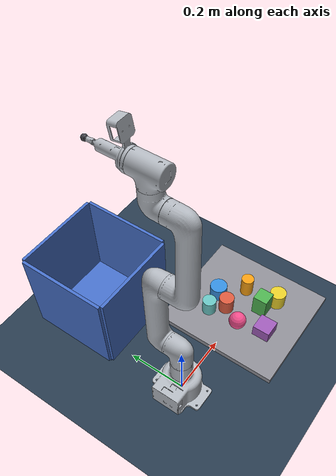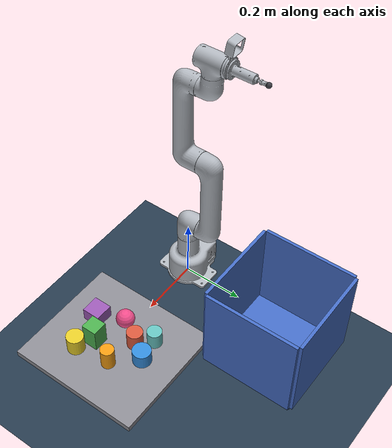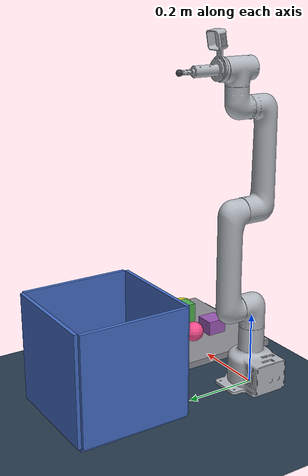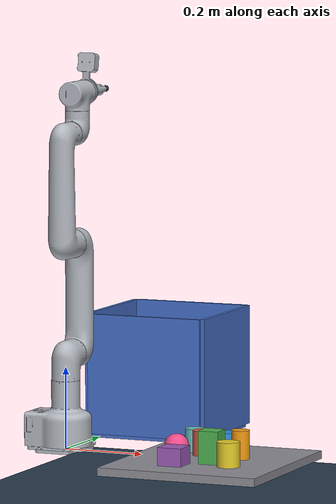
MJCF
<mujoco model="mycobot_sim">
  <compiler angle="radian" meshdir="meshes" autolimits="true"/>
  <option timestep="0.002" gravity="0 0 -9.81"/>
  <visual><global offwidth="1280" offheight="960"/>
    <headlight diffuse="0.6 0.6 0.6" ambient="0.4 0.4 0.4"/><map znear="0.01"/></visual>
  <asset>
    <texture name="grid" type="2d" builtin="checker" rgb1=".2 .3 .4" rgb2=".1 .15 .2" width="300" height="300"/>
    <material name="grid" texture="grid" texrepeat="8 8" reflectance=".1"/>
    <material name="metal" rgba="0.7 0.72 0.75 1"/>
    <material name="box" rgba="0.27 0.43 0.78 1"/>
    <material name="table" rgba="0.55 0.55 0.58 1"/>
    <material name="o0" rgba="0.85 0.35 0.24 1"/>
    <material name="o1" rgba="0.30 0.69 0.31 1"/>
    <material name="o2" rgba="0.20 0.55 0.86 1"/>
    <material name="o3" rgba="0.95 0.61 0.07 1"/>
    <material name="o4" rgba="0.61 0.35 0.71 1"/>
    <material name="o5" rgba="0.90 0.80 0.16 1"/>
    <material name="o6" rgba="0.40 0.76 0.75 1"/>
    <material name="o7" rgba="0.95 0.30 0.55 1"/>
    <mesh name="base" file="base.stl"/>
    <mesh name="link1" file="link1.stl"/>
    <mesh name="link2" file="link2.stl"/>
    <mesh name="link3" file="link3.stl"/>
    <mesh name="link4" file="link4.stl"/>
    <mesh name="link5" file="link5.stl"/>
    <mesh name="link6" file="link6.stl"/>
    <mesh name="camera_mount" file="camera_mount.stl"/>
    <mesh name="suction_cup" file="suction_cup.stl"/>
  </asset>
  <worldbody>
    <light pos="0.3 0.1 1.5" dir="0 0 -1" diffuse="0.8 0.8 0.8"/>
    <geom name="floor" type="plane" size="2 2 0.1" pos="0 0 -0.1200" material="grid"/>
    <geom name="table" type="box" pos="0.38 0.00 -0.0100" size="0.20 0.22 0.01" material="table"/>
    <!-- place bin at [0.10,0.40], floor top at 0.0, ~12 cm walls -->
    <geom name="box_floor" type="box" pos="0.1000 0.4000 -0.0050" size="0.1500 0.1500 0.0050" material="box"/>
    <geom name="box_xm" type="box" pos="-0.0550 0.4000 0.1500" size="0.0050 0.1500 0.1500" material="box"/>
    <geom name="box_xp" type="box" pos="0.2550 0.4000 0.1500" size="0.0050 0.1500 0.1500" material="box"/>
    <geom name="box_ym" type="box" pos="0.1000 0.2450 0.1500" size="0.1500 0.0050 0.1500" material="box"/>
    <geom name="box_yp" type="box" pos="0.1000 0.5550 0.1500" size="0.1500 0.0050 0.1500" material="box"/>
    <camera name="iso" pos="1.05 -0.55 0.78" xyaxes="0.45 0.89 0 -0.5 0.25 0.83"/>
    <camera name="front" pos="0.38 -0.85 0.45" xyaxes="1 0 0 0 0.45 0.89"/>
    <camera name="top" pos="0.38 0.0 0.9" xyaxes="1 0 0 0 1 0"/>
    <camera name="fixed_d435" pos="0.660 0.000 0.600" xyaxes="0.0000 1.0000 -0.0000 -0.8976 0.0000 0.4409" fovy="42.0"/>
    <body name="base_link" pos="0 0 0">
        <body name="base" pos="0.000000 0.000000 0.000000" quat="1.000000 0.000000 0.000000 0.000000">
            <inertial pos="-0.013400 0.000010 0.065840" mass="3.422500" fullinertia="1.129e-02 1.123e-02 9.902e-03 5.521e-08 -1.427e-04 -2.052e-07"/>
            <geom type="mesh" mesh="base" material="metal" contype="0" conaffinity="0"/>
            <body name="link1" pos="0.000000 0.000000 0.229340" quat="1.000000 0.000000 0.000000 0.000000">
                <joint name="joint1" type="hinge" axis="0.0000 0.0000 1.0000" range="-3.1416 3.1416" damping="1.0" armature="0.15"/>
                <inertial pos="0.000000 0.007560 -0.014550" mass="0.543400" fullinertia="5.669e-04 5.118e-04 4.049e-04 -3.760e-12 9.896e-13 -4.414e-05"/>
                <geom type="mesh" mesh="link1" material="metal" contype="0" conaffinity="0"/>
                <body name="link2" pos="0.000000 0.000000 0.000000" quat="-0.500023 -0.499975 0.500025 -0.499977">
                    <joint name="joint2" type="hinge" axis="0.0000 0.0000 -1.0000" range="-3.1416 3.1416" damping="1.0" armature="0.15"/>
                    <inertial pos="0.134440 0.000020 -0.075330" mass="1.812500" fullinertia="1.229e-03 1.587e-02 1.590e-02 -1.272e-06 -2.471e-08 -9.612e-09"/>
                    <geom type="mesh" mesh="link2" material="metal" contype="0" conaffinity="0"/>
                    <body name="link3" pos="0.270000 0.000000 0.000000" quat="1.000000 0.000000 0.000000 0.000000">
                        <joint name="joint3" type="hinge" axis="0.0000 0.0000 -1.0000" range="-2.6100 2.6180" damping="1.0" armature="0.15"/>
                        <inertial pos="0.122480 -0.000230 0.001000" mass="2.265100" fullinertia="2.065e-03 1.967e-02 1.904e-02 -1.733e-06 -3.722e-04 -9.829e-08"/>
                        <geom type="mesh" mesh="link3" material="metal" contype="0" conaffinity="0"/>
                        <body name="link4" pos="0.267000 0.000000 -0.074500" quat="0.707105 0.000000 0.000000 0.707108">
                            <joint name="joint4" type="hinge" axis="0.0000 0.0000 -1.0000" range="-2.9670 2.9670" damping="1.0" armature="0.15"/>
                            <inertial pos="0.000000 -0.014910 0.009100" mass="0.344700" fullinertia="2.681e-04 1.882e-04 2.438e-04 -2.279e-08 4.082e-09 -2.695e-05"/>
                            <geom type="mesh" mesh="link4" material="metal" contype="0" conaffinity="0"/>
                            <body name="link5" pos="0.000000 -0.095000 0.002000" quat="0.500048 0.500000 -0.500000 0.499952">
                                <joint name="joint5" type="hinge" axis="0.0000 0.0000 1.0000" range="-2.9300 2.9321" damping="1.0" armature="0.15"/>
                                <inertial pos="0.000780 0.000000 -0.006540" mass="0.420400" fullinertia="2.502e-04 3.887e-04 3.526e-04 1.986e-12 -2.156e-06 -3.526e-12"/>
                                <geom type="mesh" mesh="link5" material="metal" contype="0" conaffinity="0"/>
                                <body name="link6" pos="-0.054000 0.000000 0.000000" quat="0.707141 -0.707073 0.000000 0.000000">
                                    <joint name="joint6" type="hinge" axis="-1.0000 0.0000 0.0000" range="-3.0300 3.0368" damping="1.0" armature="0.15"/>
                                    <inertial pos="0.005430 0.000000 0.000000" mass="0.037600" fullinertia="1.680e-05 8.708e-06 8.709e-06 -1.013e-13 8.044e-10 6.140e-13"/>
                                    <geom type="mesh" mesh="link6" material="metal" contype="0" conaffinity="0"/>
                                    <body name="camera_mount" pos="-0.003000 -0.003000 0.000000" quat="0.000003 -0.707105 0.000003 0.707108">
                                        <inertial pos="0.000000 0.000000 0.000000" mass="0.050000" fullinertia="3.000e-05 3.000e-05 3.000e-05 0.000e+00 0.000e+00 0.000e+00"/>
                                        <geom type="mesh" mesh="camera_mount" material="metal" contype="0" conaffinity="0"/>
                                    </body>
                                    <body name="suction_cup" pos="0.000000 0.000000 0.000000" quat="0.707105 0.000000 0.707108 0.000000">
                                        <inertial pos="0.000000 0.000000 -0.034280" mass="0.153700" fullinertia="1.216e-04 1.216e-04 3.597e-05 2.032e-13 -3.219e-13 3.146e-10"/>
                                        <geom type="mesh" mesh="suction_cup" material="metal" contype="0" conaffinity="0"/>
                                        <body name="tcp" pos="0.000000 0.000000 -0.115000" quat="-0.000004 1.000000 0.000000 0.000000">
                                            <inertial pos="0.000000 0.000000 0.000000" mass="0.001000" fullinertia="1.000e-06 1.000e-06 1.000e-06 0.000e+00 0.000e+00 0.000e+00"/>
                                            <site name="tcp" size="0.005" rgba="1 0 0 1"/>
                                            <site name="tip_rf" size="0.004" rgba="0 1 0 0.6"/>
                                            <geom name="cup_tip" type="sphere" size="0.008" rgba="0.25 0.25 0.28 1"/>
                                            <camera name="wrist_d405" pos="0.012680 0.063243 -0.098242" quat="-0.003636 0.032818 0.996380 0.078335" fovy="58.0"/>
                                        </body>
                                        <body name="eef" pos="0.000000 0.000000 -0.105000" quat="-0.000004 1.000000 0.000000 0.000000">
                                            <inertial pos="0.000000 0.000000 0.000000" mass="0.001000" fullinertia="1.000e-06 1.000e-06 1.000e-06 0.000e+00 0.000e+00 0.000e+00"/>
                                        </body>
                                    </body>
                                </body>
                            </body>
                        </body>
                    </body>
                </body>
            </body>
        </body>
    </body>
    <!-- cluttered objects on the table (kinematic; freejoints) -->
    <body name="object0" pos="0.340 0.050 0.030"><freejoint name="obj0_free"/>
      <geom name="g_object0" type="cylinder" size="0.026 0.030" material="o0" mass="0.05"/></body>
    <body name="object1" pos="0.405 -0.055 0.040"><freejoint name="obj1_free"/>
      <geom name="g_object1" type="box" size="0.025 0.025 0.040" material="o1" mass="0.05"/></body>
    <body name="object2" pos="0.375 0.105 0.025"><freejoint name="obj2_free"/>
      <geom name="g_object2" type="cylinder" size="0.030 0.025" material="o2" mass="0.05"/></body>
    <body name="object3" pos="0.445 0.030 0.035"><freejoint name="obj3_free"/>
      <geom name="g_object3" type="cylinder" size="0.022 0.035" material="o3" mass="0.05"/></body>
    <body name="object4" pos="0.330 -0.110 0.022"><freejoint name="obj4_free"/>
      <geom name="g_object4" type="box" size="0.030 0.030 0.022" material="o4" mass="0.05"/></body>
    <body name="object5" pos="0.460 -0.085 0.030"><freejoint name="obj5_free"/>
      <geom name="g_object5" type="cylinder" size="0.028 0.030" material="o5" mass="0.05"/></body>
    <body name="object6" pos="0.300 0.095 0.028"><freejoint name="obj6_free"/>
      <geom name="g_object6" type="cylinder" size="0.024 0.028" material="o6" mass="0.05"/></body>
    <body name="object7" pos="0.300 -0.020 0.030"><freejoint name="obj7_free"/>
      <geom name="g_object7" type="sphere" size="0.030" material="o7" mass="0.05"/></body>
  </worldbody>
  <equality>
    <weld name="suction_object0" body1="tcp" body2="object0" active="false" solref="0.005 1"/>
    <weld name="suction_object1" body1="tcp" body2="object1" active="false" solref="0.005 1"/>
    <weld name="suction_object2" body1="tcp" body2="object2" active="false" solref="0.005 1"/>
    <weld name="suction_object3" body1="tcp" body2="object3" active="false" solref="0.005 1"/>
    <weld name="suction_object4" body1="tcp" body2="object4" active="false" solref="0.005 1"/>
    <weld name="suction_object5" body1="tcp" body2="object5" active="false" solref="0.005 1"/>
    <weld name="suction_object6" body1="tcp" body2="object6" active="false" solref="0.005 1"/>
    <weld name="suction_object7" body1="tcp" body2="object7" active="false" solref="0.005 1"/>
  </equality>
  <actuator>
    <motor name="act_joint1" joint="joint1" ctrlrange="-100 100"/>
    <motor name="act_joint2" joint="joint2" ctrlrange="-100 100"/>
    <motor name="act_joint3" joint="joint3" ctrlrange="-100 100"/>
    <motor name="act_joint4" joint="joint4" ctrlrange="-100 100"/>
    <motor name="act_joint5" joint="joint5" ctrlrange="-100 100"/>
    <motor name="act_joint6" joint="joint6" ctrlrange="-100 100"/>
  </actuator>
  <sensor>
    <rangefinder name="tip_range" site="tip_rf"/>
  </sensor>
</mujoco>
